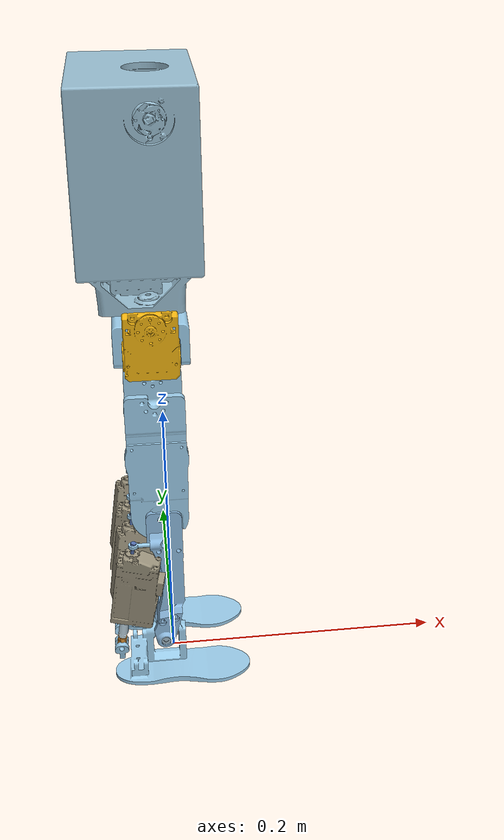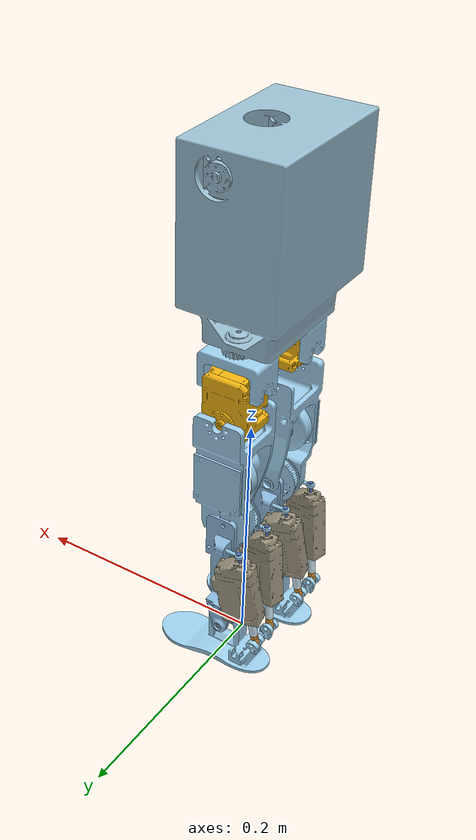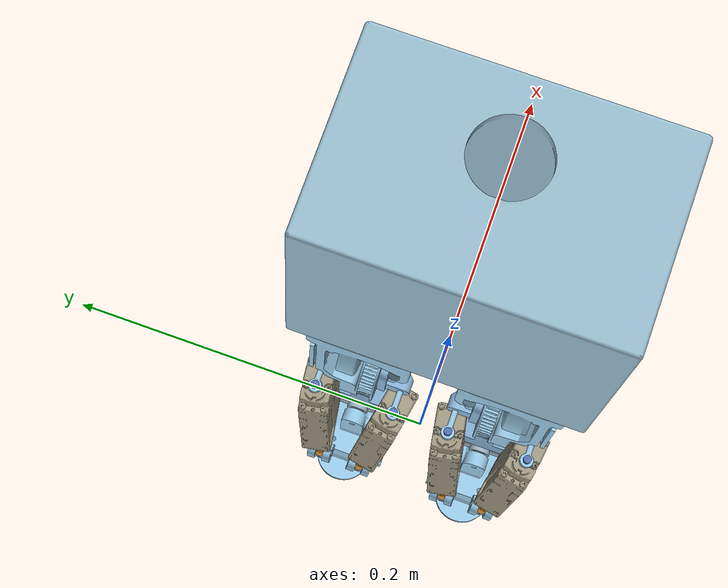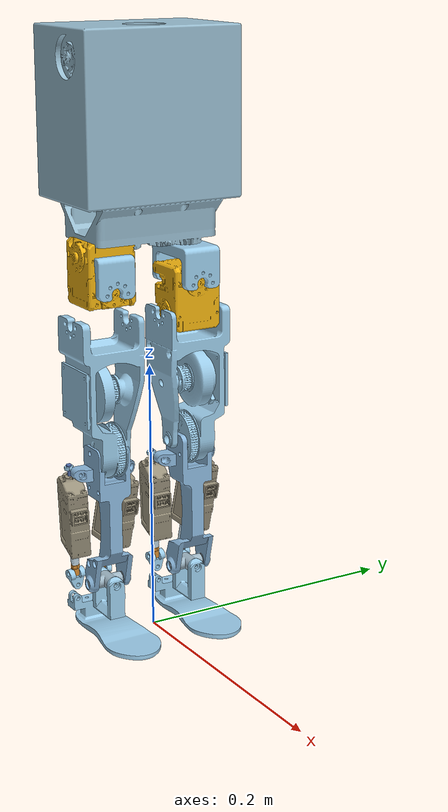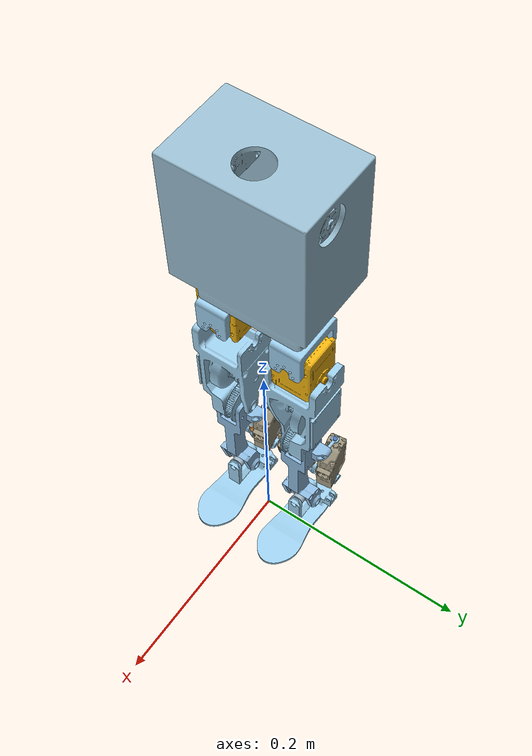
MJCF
<mujoco model="toddlerbot_legs">
  <compiler angle="radian" />
  <asset>
    <mesh name="body_link_visual" file="../assemblies/no_body/meshes/body_link_visual.stl" />
    <mesh name="body_link_collision" file="collisions/body_link_collision.stl" />
    <mesh name="left_hip_yaw_link_visual" file="../assemblies/left_3R+RH5_leg/meshes/left_hip_yaw_link_visual.stl" />
    <mesh name="left_hip_roll_link_visual" file="../assemblies/left_3R+RH5_leg/meshes/left_hip_roll_link_visual.stl" />
    <mesh name="left_hip_roll_link_collision" file="collisions/left_hip_roll_link_collision.stl" />
    <mesh name="left_hip_pitch_link_visual" file="../assemblies/left_3R+RH5_leg/meshes/left_hip_pitch_link_visual.stl" />
    <mesh name="left_hip_pitch_link_collision" file="collisions/left_hip_pitch_link_collision.stl" />
    <mesh name="left_calf_link_visual" file="../assemblies/left_3R+RH5_leg/meshes/left_calf_link_visual.stl" />
    <mesh name="left_calf_link_collision" file="collisions/left_calf_link_collision.stl" />
    <mesh name="left_ank_pitch_link_visual" file="../assemblies/left_3R+RH5_leg/meshes/left_ank_pitch_link_visual.stl" />
    <mesh name="left_ank_roll_link_visual" file="../assemblies/left_3R+RH5_leg/meshes/left_ank_roll_link_visual.stl" />
    <mesh name="left_ank_roll_link_collision" file="collisions/left_ank_roll_link_collision.stl" />
    <mesh name="left_ank_rr_link_visual" file="../assemblies/left_3R+RH5_leg/meshes/left_ank_rr_link_visual.stl" />
    <mesh name="left_12lf_rod_end_visual" file="../assemblies/left_3R+RH5_leg/meshes/left_12lf_rod_end_visual.stl" />
    <mesh name="left_ank_rr_link_2_visual" file="../assemblies/left_3R+RH5_leg/meshes/left_ank_rr_link_2_visual.stl" />
    <mesh name="left_12lf_rod_end_2_visual" file="../assemblies/left_3R+RH5_leg/meshes/left_12lf_rod_end_2_visual.stl" />
    <mesh name="left_ball_joint_container_visual" file="../assemblies/left_3R+RH5_leg/meshes/left_ball_joint_container_visual.stl" />
    <mesh name="left_ball_joint_ball_visual" file="../assemblies/left_3R+RH5_leg/meshes/left_ball_joint_ball_visual.stl" />
    <mesh name="left_12lf_visual" file="../assemblies/left_3R+RH5_leg/meshes/left_12lf_visual.stl" />
    <mesh name="left_12lf_rod_visual" file="../assemblies/left_3R+RH5_leg/meshes/left_12lf_rod_visual.stl" />
    <mesh name="left_ball_joint_container_2_visual" file="../assemblies/left_3R+RH5_leg/meshes/left_ball_joint_container_2_visual.stl" />
    <mesh name="left_ball_joint_ball_2_visual" file="../assemblies/left_3R+RH5_leg/meshes/left_ball_joint_ball_2_visual.stl" />
    <mesh name="left_12lf_2_visual" file="../assemblies/left_3R+RH5_leg/meshes/left_12lf_2_visual.stl" />
    <mesh name="left_12lf_rod_2_visual" file="../assemblies/left_3R+RH5_leg/meshes/left_12lf_rod_2_visual.stl" />
    <mesh name="right_hip_yaw_link_visual" file="../assemblies/right_3R+RH5_leg/meshes/right_hip_yaw_link_visual.stl" />
    <mesh name="right_hip_roll_link_visual" file="../assemblies/right_3R+RH5_leg/meshes/right_hip_roll_link_visual.stl" />
    <mesh name="right_hip_roll_link_collision" file="collisions/right_hip_roll_link_collision.stl" />
    <mesh name="right_hip_pitch_link_visual" file="../assemblies/right_3R+RH5_leg/meshes/right_hip_pitch_link_visual.stl" />
    <mesh name="right_hip_pitch_link_collision" file="collisions/right_hip_pitch_link_collision.stl" />
    <mesh name="right_calf_link_visual" file="../assemblies/right_3R+RH5_leg/meshes/right_calf_link_visual.stl" />
    <mesh name="right_calf_link_collision" file="collisions/right_calf_link_collision.stl" />
    <mesh name="right_ank_pitch_link_visual" file="../assemblies/right_3R+RH5_leg/meshes/right_ank_pitch_link_visual.stl" />
    <mesh name="right_ank_roll_link_visual" file="../assemblies/right_3R+RH5_leg/meshes/right_ank_roll_link_visual.stl" />
    <mesh name="right_ank_roll_link_collision" file="collisions/right_ank_roll_link_collision.stl" />
    <mesh name="right_ank_rr_link_visual" file="../assemblies/right_3R+RH5_leg/meshes/right_ank_rr_link_visual.stl" />
    <mesh name="right_12lf_rod_end_visual" file="../assemblies/right_3R+RH5_leg/meshes/right_12lf_rod_end_visual.stl" />
    <mesh name="right_ank_rr_link_2_visual" file="../assemblies/right_3R+RH5_leg/meshes/right_ank_rr_link_2_visual.stl" />
    <mesh name="right_12lf_rod_end_2_visual" file="../assemblies/right_3R+RH5_leg/meshes/right_12lf_rod_end_2_visual.stl" />
    <mesh name="right_ball_joint_container_visual" file="../assemblies/right_3R+RH5_leg/meshes/right_ball_joint_container_visual.stl" />
    <mesh name="right_ball_joint_ball_visual" file="../assemblies/right_3R+RH5_leg/meshes/right_ball_joint_ball_visual.stl" />
    <mesh name="right_12lf_visual" file="../assemblies/right_3R+RH5_leg/meshes/right_12lf_visual.stl" />
    <mesh name="right_12lf_rod_visual" file="../assemblies/right_3R+RH5_leg/meshes/right_12lf_rod_visual.stl" />
    <mesh name="right_ball_joint_container_2_visual" file="../assemblies/right_3R+RH5_leg/meshes/right_ball_joint_container_2_visual.stl" />
    <mesh name="right_ball_joint_ball_2_visual" file="../assemblies/right_3R+RH5_leg/meshes/right_ball_joint_ball_2_visual.stl" />
    <mesh name="right_12lf_2_visual" file="../assemblies/right_3R+RH5_leg/meshes/right_12lf_2_visual.stl" />
    <mesh name="right_12lf_rod_2_visual" file="../assemblies/right_3R+RH5_leg/meshes/right_12lf_rod_2_visual.stl" />
  </asset>
  <worldbody>
    <body name="body_link" pos="0 0 0" quat="1 0 0 0">
      <inertial pos="-0.014404 -0.000232 0.311533" quat="1.000000 0.000000 0.000000 0.000000" mass="0.13263292" diaginertia="1.21631e-04 8.49701e-05 1.56471e-04" />
      <freejoint />
      <site name="torso" fromto="0.01 0 0.4 -0.01 0 0.4" type="cylinder" size="0.005 0.005 1" group="3" />
      <geom rgba="0.602652 0.747582 0.822925 1" mesh="body_link_visual" class="visual" />
      <geom rgba="0.602652 0.747582 0.822925 1" mesh="body_link_collision" class="collision" />
      <body name="hip_yaw_link" pos="-0.0064 0.034 0.2855" quat="1 0 0 0">
        <inertial pos="0 0 -0.00983905" quat="0 0.707107 0 0.707107" mass="0.00902588" diaginertia="3.87214e-06 3.84085e-06 1.32305e-06" />
        <joint name="left_hip_yaw" pos="0 0 0" axis="0 0 1" limited="true" range="-0.785398 0.785398" damping="0.099" armature="0.0033" frictionloss="0.0037" />
        <geom rgba="0.615686 0.811765 0.929412 1" mesh="left_hip_yaw_link_visual" class="visual" />
        <body name="hip_roll_link" pos="0.019 0 -0.026" quat="0 0.707107 0 0.707107">
          <inertial pos="-0.0120002 -0.000495888 -0.018504" quat="0.654458 0.267712 0.652088 0.27349" mass="0.0980124" diaginertia="2.78674e-05 2.68492e-05 2.02212e-05" />
          <joint name="left_hip_roll" pos="0 0 0" axis="0 0 1" limited="true" range="-0.785398 1.5708" damping="2.741" armature="0.0669" frictionloss="0.0" />
          <geom rgba="0.950187 0.706789 0.0616121 1" mesh="left_hip_roll_link_visual" class="visual" />
          <geom rgba="0.950187 0.706789 0.0616121 1" mesh="left_hip_roll_link_collision" class="collision" />
          <body name="left_hip_pitch_link" pos="-0.024 -0.019 -0.019" quat="0.5 -0.5 0.5 0.5">
            <inertial pos="-0.000219373 0.0528645 0.0147109" quat="0.670209 0.691924 0.196498 -0.182892" mass="0.0935391" diaginertia="6.26008e-05 6.22249e-05 2.14423e-05" />
            <joint name="left_hip_pitch" pos="0 0 0" axis="0 0 1" limited="true" range="-1.5708 1.5708" damping="1.723" armature="0.0494" frictionloss="0.0" />
            <geom rgba="0.616541 0.807276 0.921717 1" mesh="left_hip_pitch_link_visual" class="visual" />
            <geom rgba="0.616541 0.807276 0.921717 1" mesh="left_hip_pitch_link_collision" class="collision" />
            <body name="left_calf_link" pos="0 0.096 0.0274" quat="0 1 0 0">
              <inertial pos="-0.00391362 -0.04364 0.00818493" quat="0.707645 0.706509 -0.0088213 -0.00239695" mass="0.0162906" diaginertia="1.55474e-05 1.48072e-05 1.93298e-06" />
              <joint name="left_knee" pos="0 0 0" axis="0 0 1" limited="true" range="0 1.5708" damping="1.286" armature="0.0003" frictionloss="0.1813" />
              <geom rgba="0.553972 0.731614 0.877157 1" mesh="left_calf_link_visual" class="visual" />
              <geom rgba="0.553972 0.731614 0.877157 1" mesh="left_calf_link_collision" class="collision" />
              <body name="ank_pitch_link" pos="0 -0.1 -0.0062" quat="0 0.707107 -0.707107 0">
                <inertial pos="4.02697e-08 0.000595283 -0.0145999" quat="1 0 -2.35914e-06 0" mass="0.00422384" diaginertia="4.37053e-07 3.97827e-07 8.88586e-08" />
                <joint name="left_ank_pitch" pos="0 0 0" axis="0 0 1" limited="true" range="-0.523599 0.523599" damping="0.053" armature="0.0016" frictionloss="0.0001" />
                <geom rgba="0.631892 0.726687 0.783564 1" mesh="left_ank_pitch_link_visual" class="visual" />
                <body name="ank_roll_link" pos="0 0.0015 -0.0146" quat="0.5 -0.5 -0.5 -0.5">
                  <inertial pos="-0.00679543 0.0308001 -0.00196459" quat="0.810294 -0.0798422 -0.00782205 0.580506" mass="0.0212106" diaginertia="1.92447e-05 1.64824e-05 7.29055e-06" />
                  <joint name="left_ank_roll" pos="0 0 0" axis="0 0 1" limited="true" range="-0.785398 0.785398" damping="0.062" armature="0.0018" frictionloss="0.0031" />
                  <geom rgba="0.615686 0.811765 0.929412 1" mesh="left_ank_roll_link_visual" class="visual" />
                  <geom rgba="0.615686 0.811765 0.929412 1" mesh="left_ank_roll_link_collision" class="collision" />
                  <body name="ank_rr_link" pos="-0.01 0.0125 -0.0336" quat="0.998721 0 0 -0.0505586">
                    <inertial pos="0 -0.00614477 0" quat="0.5 0.5 -0.5 0.5" mass="0.000425071" diaginertia="1.25044e-08 8.78432e-09 8.03017e-09" />
                    <joint name="left_ank_R11" pos="0 0 0" axis="0 0 1" limited="true" range="-1.5708 1.5708" />
                    <geom rgba="0.615686 0.811765 0.929412 1" mesh="left_ank_rr_link_visual" class="visual" />
                    <body name="12lf_rod_end" pos="0 -0.01 0" quat="0.70532 -0.0502423 -0.70532 0.0502423">
                      <inertial pos="-4.47352e-11 -0.00384222 6.43842e-06" quat="0.500199 0.499801 -0.499801 0.500199" mass="0.000854205" diaginertia="1.27035e-08 1.1841e-08 3.35496e-09" />
                      <joint name="left_ank_R21" pos="0 0 0" axis="0 0 1" limited="true" range="-1.5708 1.5708" />
                      <geom rgba="0.927718 0.610493 0.218477 1" mesh="left_12lf_rod_end_visual" class="visual" />
                    </body>
                  </body>
                  <body name="ank_rr_link_2" pos="0.01 0.0125 -0.0336" quat="0 0.0504983 -0.998724 0">
                    <inertial pos="0 -0.00614477 0" quat="0.5 0.5 -0.5 0.5" mass="0.000425071" diaginertia="1.25044e-08 8.78432e-09 8.03017e-09" />
                    <joint name="left_ank_R12" pos="0 0 0" axis="0 0 1" limited="true" range="-1.5708 1.5708" />
                    <geom rgba="0.615686 0.811765 0.929412 1" mesh="left_ank_rr_link_2_visual" class="visual" />
                    <body name="12lf_rod_end_2" pos="0 -0.01 0" quat="0.705319 0.0502506 -0.705319 -0.0502506">
                      <inertial pos="-4.47352e-11 -0.00384222 6.43842e-06" quat="0.500199 0.499801 -0.499801 0.500199" mass="0.000854205" diaginertia="1.27035e-08 1.1841e-08 3.35496e-09" />
                      <joint name="left_ank_R22" pos="0 0 0" axis="0 0 1" limited="true" range="-1.5708 1.5708" />
                      <geom rgba="0.927718 0.610493 0.218477 1" mesh="left_12lf_rod_end_2_visual" class="visual" />
                    </body>
                  </body>
                </body>
              </body>
              <body name="ball_joint_container" pos="0.008 -0.015 0.0283" quat="0.0357503 -0.706202 -0.0357503 0.706202">
                <inertial pos="0 0 -0.00971253" quat="0.707107 0 0 0.707107" mass="4.80374e-05" diaginertia="8.47542e-10 7.18655e-10 1.86253e-10" />
                <joint name="left_ank_B11" pos="0 0 0" axis="0 0 1" limited="true" range="-0.785398 0.785398" />
                <geom rgba="0.615686 0.811765 0.929412 1" mesh="left_ball_joint_container_visual" class="visual" />
                <body name="ball_joint_ball" pos="0 0 -0.0115" quat="0.0502423 0.70532 0.0502423 0.70532">
                  <inertial pos="0 -0.00103087 0" quat="0.707107 0.707107 0 0" mass="4.40538e-05" diaginertia="3.1285e-10 3.12853e-10 6.25696e-11" />
                  <joint name="left_ank_B21" pos="0 0 0" axis="0 0 1" limited="true" range="-0.785398 0.785398" />
                  <geom rgba="0.32913 0.443105 0.692049 1" mesh="left_ball_joint_ball_visual" class="visual" />
                  <body name="12lf" pos="0 -0.00643875 0" quat="0.70458 -0.70458 0.0597268 0.0597268">
                    <inertial pos="0.00490842 -0.000138024 -0.029947" quat="0.709913 0.00132323 0.0043477 0.704274" mass="0.0447822" diaginertia="1.81889e-05 1.52606e-05 5.14874e-06" />
                    <joint name="left_ank_B31" pos="0 0 0" axis="0 0 1" limited="true" range="-0.785398 0.785398" />
                    <geom rgba="0.620044 0.588367 0.498971 1" mesh="left_12lf_visual" class="visual" />
                    <body name="12lf_rod" pos="2.27221e-06 0 -0.07266" quat="0 -0.452653 0.891687 0">
                      <inertial pos="-6.32221e-07 4.69333e-07 -0.0128934" quat="1 -2.00488e-05 -2.69482e-05 -5.4028e-10" mass="0.00250883" diaginertia="2.69445e-07 2.69445e-07 1.78098e-08" />
                      <joint name="left_ank_act1" pos="0 0 0" axis="0 0 1" type="slide" limited="true" range="0 0.04" />
                      <geom rgba="0.802503 0.893406 0.944918 1" mesh="left_12lf_rod_visual" class="visual" />
                    </body>
                  </body>
                </body>
              </body>
              <body name="ball_joint_container_2" pos="0.008 -0.015 -0.0115" quat="0.706205 -0.0357077 -0.706205 0.0357077">
                <inertial pos="0 0 -0.00971253" quat="0.707107 0 0 0.707107" mass="4.80374e-05" diaginertia="8.47542e-10 7.18655e-10 1.86253e-10" />
                <joint name="left_ank_B12" pos="0 0 0" axis="0 0 1" limited="true" range="-0.785398 0.785398" />
                <geom rgba="0.615686 0.811765 0.929412 1" mesh="left_ball_joint_container_2_visual" class="visual" />
                <body name="ball_joint_ball_2" pos="0 0 -0.0115" quat="0.705319 0.0502506 -0.705319 -0.0502506">
                  <inertial pos="0 -0.00103087 0" quat="0.707107 0.707107 0 0" mass="4.40538e-05" diaginertia="3.1285e-10 3.12853e-10 6.25696e-11" />
                  <joint name="left_ank_B22" pos="0 0 0" axis="0 0 1" limited="true" range="-0.785398 0.785398" />
                  <geom rgba="0.32913 0.443105 0.692049 1" mesh="left_ball_joint_ball_2_visual" class="visual" />
                  <body name="12lf_2" pos="0 -0.00643875 0" quat="0.704247 -0.704247 -0.0635296 -0.0635296">
                    <inertial pos="0.00490842 -0.000138024 -0.029947" quat="0.709913 0.00132323 0.0043477 0.704274" mass="0.0447822" diaginertia="1.81889e-05 1.52606e-05 5.14874e-06" />
                    <joint name="left_ank_B32" pos="0 0 0" axis="0 0 1" limited="true" range="-0.785398 0.785398" />
                    <geom rgba="0.620044 0.588367 0.498971 1" mesh="left_12lf_2_visual" class="visual" />
                    <body name="12lf_rod_2" pos="2.27221e-06 0 -0.07266" quat="0 -0.452653 0.891687 0">
                      <inertial pos="-6.32221e-07 4.69333e-07 -0.0128934" quat="1 -2.00488e-05 -2.69482e-05 -5.4028e-10" mass="0.00250883" diaginertia="2.69445e-07 2.69445e-07 1.78098e-08" />
                      <joint name="left_ank_act2" pos="0 0 0" axis="0 0 1" type="slide" limited="true" range="0 0.04" />
                      <geom rgba="0.802503 0.893406 0.944918 1" mesh="left_12lf_rod_2_visual" class="visual" />
                    </body>
                  </body>
                </body>
              </body>
            </body>
          </body>
        </body>
      </body>
      <body name="hip_yaw_link_2" pos="-0.0064 -0.034 0.2855" quat="1 0 0 0">
        <inertial pos="0 0 -0.00983905" quat="0 0.707107 0 0.707107" mass="0.00902588" diaginertia="3.87214e-06 3.84085e-06 1.32305e-06" />
        <joint name="right_hip_yaw" pos="0 0 0" axis="0 0 1" limited="true" range="-0.785398 0.785398" damping="0.099" armature="0.0033" frictionloss="0.0037" />
        <geom rgba="0.615686 0.811765 0.929412 1" mesh="right_hip_yaw_link_visual" class="visual" />
        <body name="hip_roll_link_2" pos="0.019 0 -0.026" quat="0.707107 0 0.707107 0">
          <inertial pos="0.0120002 -0.000495888 -0.019496" quat="0.27349 0.652088 0.267712 0.654458" mass="0.0980124" diaginertia="2.78674e-05 2.68492e-05 2.02212e-05" />
          <joint name="right_hip_roll" pos="0 0 0" axis="0 0 1" limited="true" range="-1.5708 0.785398" damping="2.741" armature="0.0669" frictionloss="0.0" />
          <geom rgba="0.950187 0.706789 0.0616121 1" mesh="right_hip_roll_link_visual" class="visual" />
          <geom rgba="0.950187 0.706789 0.0616121 1" mesh="right_hip_roll_link_collision" class="collision" />
          <body name="right_hip_pitch_link" pos="0.024 -0.019 -0.019" quat="0.5 -0.5 -0.5 -0.5">
            <inertial pos="-1.30438e-05 0.0528645 0.0147109" quat="0.694626 0.71927 0.0065765 -0.0101395" mass="0.0935391" diaginertia="6.24972e-05 6.23298e-05 2.145e-05" />
            <joint name="right_hip_pitch" pos="0 0 0" axis="0 0 1" limited="true" range="-1.5708 1.5708" damping="1.723" armature="0.0494" frictionloss="0.0" />
            <geom rgba="0.616541 0.807276 0.921717 1" mesh="right_hip_pitch_link_visual" class="visual" />
            <geom rgba="0.616541 0.807276 0.921717 1" mesh="right_hip_pitch_link_collision" class="collision" />
            <body name="right_calf_link" pos="0 0.096 0.0274" quat="0 0 1 0">
              <inertial pos="-0.0039136 0.04364 0.0081849" quat="0.706509 0.707645 0.00239487 0.00882362" mass="0.0162906" diaginertia="1.55475e-05 1.48072e-05 1.933e-06" />
              <joint name="right_knee" pos="0 0 0" axis="0 0 1" limited="true" range="-1.5708 0" damping="1.286" armature="0.0003" frictionloss="0.1813" />
              <geom rgba="0.553972 0.731614 0.877157 1" mesh="right_calf_link_visual" class="visual" />
              <geom rgba="0.553972 0.731614 0.877157 1" mesh="right_calf_link_collision" class="collision" />
              <body name="ank_pitch_link_2" pos="0 0.1 -0.0062" quat="0 -0.707107 0.707107 0">
                <inertial pos="4.02697e-08 0.000595283 -0.0145999" quat="1 0 -2.35914e-06 0" mass="0.00422384" diaginertia="4.37053e-07 3.97827e-07 8.88586e-08" />
                <joint name="right_ank_pitch" pos="0 0 0" axis="0 0 1" limited="true" range="-0.523599 0.523599" damping="0.053" armature="0.0016" frictionloss="0.0001" />
                <geom rgba="0.631892 0.726687 0.783564 1" mesh="right_ank_pitch_link_visual" class="visual" />
                <body name="ank_roll_link_2" pos="0 0.0015 -0.0146" quat="0.5 -0.5 0.5 0.5">
                  <inertial pos="0.00679543 0.0308001 -0.00196459" quat="0.580506 0.00782207 0.0798423 0.810294" mass="0.0212106" diaginertia="1.92447e-05 1.64824e-05 7.29055e-06" />
                  <joint name="right_ank_roll" pos="0 0 0" axis="0 0 1" limited="true" range="-0.785398 0.785398" damping="0.062" armature="0.0018" frictionloss="0.0031" />
                  <geom rgba="0.615686 0.811765 0.929412 1" mesh="right_ank_roll_link_visual" class="visual" />
                  <geom rgba="0.615686 0.811765 0.929412 1" mesh="right_ank_roll_link_collision" class="collision" />
                  <body name="ank_rr_link_3" pos="-0.01 0.0125 -0.0336" quat="0.998721 0 0 -0.0505586">
                    <inertial pos="0 -0.00614477 0" quat="0.5 0.5 -0.5 0.5" mass="0.000425071" diaginertia="1.25044e-08 8.78432e-09 8.03017e-09" />
                    <joint name="right_ank_R11" pos="0 0 0" axis="0 0 1" limited="true" range="-1.5708 1.5708" />
                    <geom rgba="0.615686 0.811765 0.929412 1" mesh="right_ank_rr_link_visual" class="visual" />
                    <body name="12lf_rod_end_3" pos="0 -0.01 0" quat="0.70532 -0.0502423 -0.70532 0.0502423">
                      <inertial pos="-4.47352e-11 -0.00384222 6.43842e-06" quat="0.500199 0.499801 -0.499801 0.500199" mass="0.000854205" diaginertia="1.27035e-08 1.1841e-08 3.35496e-09" />
                      <joint name="right_ank_R21" pos="0 0 0" axis="0 0 1" limited="true" range="-1.5708 1.5708" />
                      <geom rgba="0.927718 0.610493 0.218477 1" mesh="right_12lf_rod_end_visual" class="visual" />
                    </body>
                  </body>
                  <body name="ank_rr_link_4" pos="0.01 0.0125 -0.0336" quat="0 -0.0504983 0.998724 0">
                    <inertial pos="0 -0.00614477 0" quat="0.5 0.5 -0.5 0.5" mass="0.000425071" diaginertia="1.25044e-08 8.78432e-09 8.03017e-09" />
                    <joint name="right_ank_R12" pos="0 0 0" axis="0 0 1" limited="true" range="-1.5708 1.5708" />
                    <geom rgba="0.615686 0.811765 0.929412 1" mesh="right_ank_rr_link_2_visual" class="visual" />
                    <body name="12lf_rod_end_4" pos="0 -0.01 0" quat="0.705319 0.0502506 -0.705319 -0.0502506">
                      <inertial pos="-4.47352e-11 -0.00384222 6.43842e-06" quat="0.500199 0.499801 -0.499801 0.500199" mass="0.000854205" diaginertia="1.27035e-08 1.1841e-08 3.35496e-09" />
                      <joint name="right_ank_R22" pos="0 0 0" axis="0 0 1" limited="true" range="-1.5708 1.5708" />
                      <geom rgba="0.927718 0.610493 0.218477 1" mesh="right_12lf_rod_end_2_visual" class="visual" />
                    </body>
                  </body>
                </body>
              </body>
              <body name="ball_joint_container_3" pos="0.008 0.015 -0.0115" quat="0.706202 0.0357503 -0.706202 -0.0357503">
                <inertial pos="0 0 -0.00971253" quat="0.707107 0 0 0.707107" mass="4.80374e-05" diaginertia="8.47542e-10 7.18655e-10 1.86253e-10" />
                <joint name="right_ank_B11" pos="0 0 0" axis="0 0 1" limited="true" range="-0.785398 0.785398" />
                <geom rgba="0.615686 0.811765 0.929412 1" mesh="right_ball_joint_container_visual" class="visual" />
                <body name="ball_joint_ball_3" pos="0 0 -0.0115" quat="0.0502423 0.70532 0.0502423 0.70532">
                  <inertial pos="0 -0.00103087 0" quat="0.707107 0.707107 0 0" mass="4.40538e-05" diaginertia="3.1285e-10 3.12853e-10 6.25696e-11" />
                  <joint name="right_ank_B21" pos="0 0 0" axis="0 0 1" limited="true" range="-0.785398 0.785398" />
                  <geom rgba="0.32913 0.443105 0.692049 1" mesh="right_ball_joint_ball_visual" class="visual" />
                  <body name="12lf_3" pos="0 -0.00643875 0" quat="0.70458 -0.70458 0.0597268 0.0597268">
                    <inertial pos="0.00490842 -0.000138024 -0.029947" quat="0.709913 0.00132323 0.0043477 0.704274" mass="0.0447822" diaginertia="1.81889e-05 1.52606e-05 5.14874e-06" />
                    <joint name="right_ank_B31" pos="0 0 0" axis="0 0 1" limited="true" range="-0.785398 0.785398" />
                    <geom rgba="0.620044 0.588367 0.498971 1" mesh="right_12lf_visual" class="visual" />
                    <body name="12lf_rod_3" pos="2.27221e-06 0 -0.07266" quat="0 -0.452653 0.891687 0">
                      <inertial pos="-6.32221e-07 4.69333e-07 -0.0128934" quat="1 -2.00488e-05 -2.69482e-05 -5.4028e-10" mass="0.00250883" diaginertia="2.69445e-07 2.69445e-07 1.78098e-08" />
                      <joint name="right_ank_act1" pos="0 0 0" axis="0 0 1" type="slide" limited="true" range="0 0.04" />
                      <geom rgba="0.802503 0.893406 0.944918 1" mesh="right_12lf_rod_visual" class="visual" />
                    </body>
                  </body>
                </body>
              </body>
              <body name="ball_joint_container_4" pos="0.008 0.015 0.0283" quat="0.706205 -0.0357077 -0.706205 0.0357077">
                <inertial pos="0 0 -0.00971253" quat="0.707107 0 0 0.707107" mass="4.80374e-05" diaginertia="8.47542e-10 7.18655e-10 1.86253e-10" />
                <joint name="right_ank_B12" pos="0 0 0" axis="0 0 1" limited="true" range="-0.785398 0.785398" />
                <geom rgba="0.615686 0.811765 0.929412 1" mesh="right_ball_joint_container_2_visual" class="visual" />
                <body name="ball_joint_ball_4" pos="0 0 -0.0115" quat="0.0502506 0.705319 0.0502506 0.705319">
                  <inertial pos="0 -0.00103087 0" quat="0.707107 0.707107 0 0" mass="4.40538e-05" diaginertia="3.1285e-10 3.12853e-10 6.25696e-11" />
                  <joint name="right_ank_B22" pos="0 0 0" axis="0 0 1" limited="true" range="-0.785398 0.785398" />
                  <geom rgba="0.32913 0.443105 0.692049 1" mesh="right_ball_joint_ball_2_visual" class="visual" />
                  <body name="12lf_4" pos="0 -0.00643875 0" quat="0.704247 -0.704247 -0.0635296 -0.0635296">
                    <inertial pos="0.00490842 -0.000138024 -0.029947" quat="0.709913 0.00132323 0.0043477 0.704274" mass="0.0447822" diaginertia="1.81889e-05 1.52606e-05 5.14874e-06" />
                    <joint name="right_ank_B32" pos="0 0 0" axis="0 0 1" limited="true" range="-0.785398 0.785398" />
                    <geom rgba="0.620044 0.588367 0.498971 1" mesh="right_12lf_2_visual" class="visual" />
                    <body name="12lf_rod_4" pos="2.27221e-06 0 -0.07266" quat="0 0.452653 -0.891687 0">
                      <inertial pos="-6.32221e-07 4.69333e-07 -0.0128934" quat="1 -2.00488e-05 -2.69482e-05 -5.4028e-10" mass="0.00250883" diaginertia="2.69445e-07 2.69445e-07 1.78098e-08" />
                      <joint name="right_ank_act2" pos="0 0 0" axis="0 0 1" type="slide" limited="true" range="0 0.04" />
                      <geom rgba="0.802503 0.893406 0.944918 1" mesh="right_12lf_rod_2_visual" class="visual" />
                    </body>
                  </body>
                </body>
              </body>
            </body>
          </body>
        </body>
      </body>
    </body>
  </worldbody>
  <actuator>
    <position name="left_hip_yaw_act" joint="left_hip_yaw" kp="3.125" kv="0.0" ctrlrange="-0.785398 0.785398" />
    <position name="left_hip_roll_act" joint="left_hip_roll" kp="26.0" kv="0.0" ctrlrange="-0.785398 1.5708" />
    <position name="left_hip_pitch_act" joint="left_hip_pitch" kp="13.0" kv="0.0" ctrlrange="-1.5708 1.5708" />
    <position name="left_knee_act" joint="left_knee" kp="40.0" kv="0.0" ctrlrange="0 1.5708" />
    <position name="left_ank_pitch_act" joint="left_ank_pitch" kp="1.0" kv="0.0" ctrlrange="-0.523599 0.523599" />
    <position name="left_ank_roll_act" joint="left_ank_roll" kp="1.0" kv="0.0" ctrlrange="-0.785398 0.785398" />
    <position name="right_hip_yaw_act" joint="right_hip_yaw" kp="3.125" kv="0.0" ctrlrange="-0.785398 0.785398" />
    <position name="right_hip_roll_act" joint="right_hip_roll" kp="26.0" kv="0.0" ctrlrange="-1.5708 0.785398" />
    <position name="right_hip_pitch_act" joint="right_hip_pitch" kp="13.0" kv="0.0" ctrlrange="-1.5708 1.5708" />
    <position name="right_knee_act" joint="right_knee" kp="40.0" kv="0.0" ctrlrange="-1.5708 0" />
    <position name="right_ank_pitch_act" joint="right_ank_pitch" kp="1.0" kv="0.0" ctrlrange="-0.523599 0.523599" />
    <position name="right_ank_roll_act" joint="right_ank_roll" kp="1.0" kv="0.0" ctrlrange="-0.785398 0.785398" />
  </actuator>
  <equality>
    <weld body1="12lf_rod_end" body2="12lf_rod" solimp="0.9999 0.9999 0.001 0.5 2" solref="0.0001 1" />
    <weld body1="12lf_rod_end_2" body2="12lf_rod_2" solimp="0.9999 0.9999 0.001 0.5 2" solref="0.0001 1" />
    <weld body1="12lf_rod_end_3" body2="12lf_rod_3" solimp="0.9999 0.9999 0.001 0.5 2" solref="0.0001 1" />
    <weld body1="12lf_rod_end_4" body2="12lf_rod_4" solimp="0.9999 0.9999 0.001 0.5 2" solref="0.0001 1" />
  </equality>
  <default>
    <position forcelimited="false" />
    <geom type="mesh" solref=".004 1" />
    <default class="visual">
      <geom contype="0" conaffinity="0" group="2" density="0" />
    </default>
    <default class="collision">
      <geom group="3" />
    </default>
  </default>
  <contact>
    <exclude body1="body_link" body2="hip_roll_link" />
    <exclude body1="body_link" body2="left_hip_pitch_link" />
    <exclude body1="body_link" body2="left_calf_link" />
    <exclude body1="body_link" body2="ank_roll_link" />
    <exclude body1="body_link" body2="hip_roll_link_2" />
    <exclude body1="body_link" body2="right_hip_pitch_link" />
    <exclude body1="body_link" body2="right_calf_link" />
    <exclude body1="body_link" body2="ank_roll_link_2" />
    <exclude body1="hip_roll_link" body2="left_hip_pitch_link" />
    <exclude body1="hip_roll_link" body2="left_calf_link" />
    <exclude body1="hip_roll_link" body2="ank_roll_link" />
    <exclude body1="left_hip_pitch_link" body2="left_calf_link" />
    <exclude body1="left_hip_pitch_link" body2="ank_roll_link" />
    <exclude body1="left_calf_link" body2="ank_roll_link" />
    <exclude body1="hip_roll_link_2" body2="right_hip_pitch_link" />
    <exclude body1="hip_roll_link_2" body2="right_calf_link" />
    <exclude body1="hip_roll_link_2" body2="ank_roll_link_2" />
    <exclude body1="right_hip_pitch_link" body2="right_calf_link" />
    <exclude body1="right_hip_pitch_link" body2="ank_roll_link_2" />
    <exclude body1="right_calf_link" body2="ank_roll_link_2" />
  </contact>
</mujoco>
